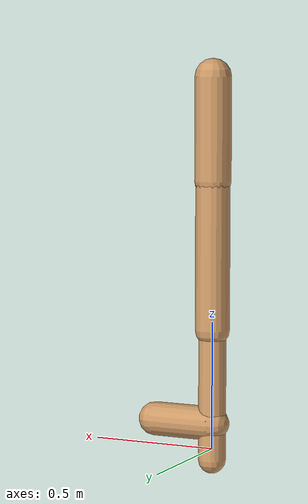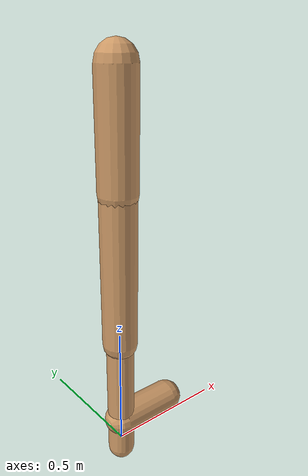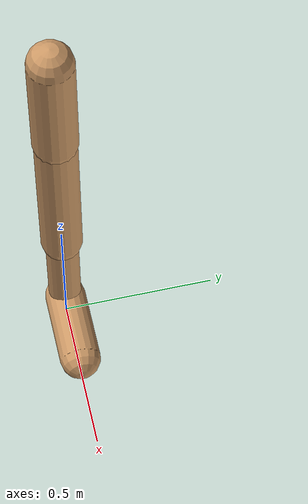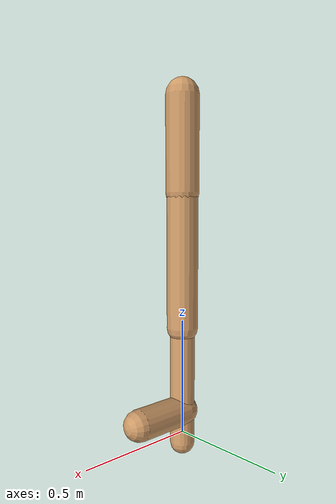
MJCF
<mujoco model="walker2d">
  <compiler angle="degree" coordinate="global" inertiafromgeom="true" />
  <default>
    <joint armature="0.01" damping=".1" limited="true" />
    <geom conaffinity="0" condim="3" contype="1" density="1000" friction="0.8 .1 .1" rgba="0.8 0.6 .4 1" />
  </default>
  <option integrator="RK4" timestep="0.002" />
  <worldbody>

    <body name="torso" pos="0 0 0.2723341595496914">
      <joint armature="0" axis="1 0 0" damping="0" limited="false" name="ignorex" pos="0 0 0" stiffness="0" type="slide" />
      <joint armature="0" axis="0 0 1" damping="0" limited="false" name="ignorez" pos="0 0 0" ref="1.25" stiffness="0" type="slide" />
      <joint armature="0" axis="0 1 0" damping="0" limited="false" name="ignorey" pos="0 0 0" stiffness="0" type="hinge" />
      <geom fromto="0 0 1.45 0 0 1.05" name="torso_geom" size="0.07112770752384984" type="capsule" />
      <body name="thigh">
        <joint axis="0 -1 0" name="thigh_joint" pos="0 0 1.05" range="-150 0" type="hinge" />
        <geom fromto="0.0 0.0 1.05 0.0 0.0 0.47099960863435664" name="thigh_geom" size="0.06727766122289237" type="capsule" />
        <body name="leg" pos="0.0 0.0 -0.12900039136564334">
          <joint axis="0 -1 0" name="leg_joint" pos="0 0 0.6" range="-150 0" type="hinge" />
          <geom fromto="0.0 0.0 0.6 0.0 0.0 -0.043333768184048105" name="leg_geom" size="0.0538221289783139" type="capsule" />
          <body name="foot" pos="0.0 0.0 -0.1433337681840481">
            <joint axis="0 -1 0" name="foot_joint" pos="0 0 0.1" range="-45 45" type="hinge" />
            <geom fromto="-0.0 0.0 0.1 0.24297379637376793 0.0 0.1" name="foot_geom" size="0.06678460462043789" type="capsule" />
          </body>
        </body>
      </body>

      <body name="thigh_left">
        <joint axis="0 -1 0" name="thigh_left_joint" pos="0 0 1.05" range="-150 0" type="hinge" />
        <geom fromto="0.0 0.0 1.05 0.0 0.0 0.47099960863435664" name="thigh_left_geom" rgba=".7 .3 .6 1" size="0.06727766122289237" type="capsule" />
        <body name="leg_left" pos="0.0 0.0 -0.12900039136564334">
          <joint axis="0 -1 0" name="leg_left_joint" pos="0 0 0.6" range="-150 0" type="hinge" />
          <geom fromto="0.0 0.0 0.6 0.0 0.0 -0.043333768184048105" name="leg_left_geom" rgba=".7 .3 .6 1" size="0.0538221289783139" type="capsule" />
          <body name="foot_left" pos="0.0 0.0 -0.1433337681840481">
            <joint axis="0 -1 0" name="foot_left_joint" pos="0 0 0.1" range="-45 45" type="hinge" />
            <geom fromto="-0.0 0.0 0.1 0.24297379637376793 0.0 0.1" name="foot_left_geom" rgba=".7 .3 .6 1" size="0.06678460462043789" type="capsule" />
          </body>
        </body>
      </body>
    </body>
  </worldbody>
  <actuator>

    <motor ctrllimited="true" ctrlrange="-1.0 1.0" gear="100" joint="thigh_joint" />
    <motor ctrllimited="true" ctrlrange="-1.0 1.0" gear="100" joint="leg_joint" />
    <motor ctrllimited="true" ctrlrange="-1.0 1.0" gear="100" joint="foot_joint" />
    <motor ctrllimited="true" ctrlrange="-1.0 1.0" gear="100" joint="thigh_left_joint" />
    <motor ctrllimited="true" ctrlrange="-1.0 1.0" gear="100" joint="leg_left_joint" />
    <motor ctrllimited="true" ctrlrange="-1.0 1.0" gear="100" joint="foot_left_joint" />

  </actuator>
</mujoco>
